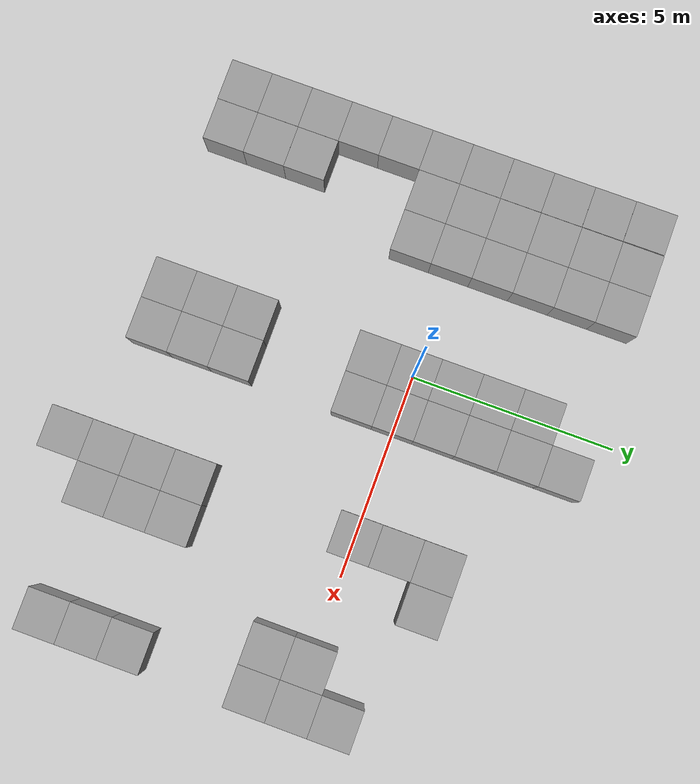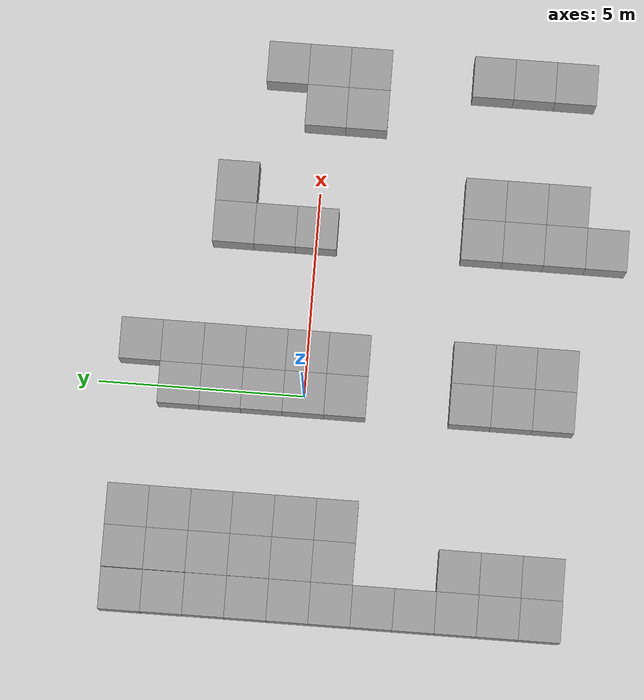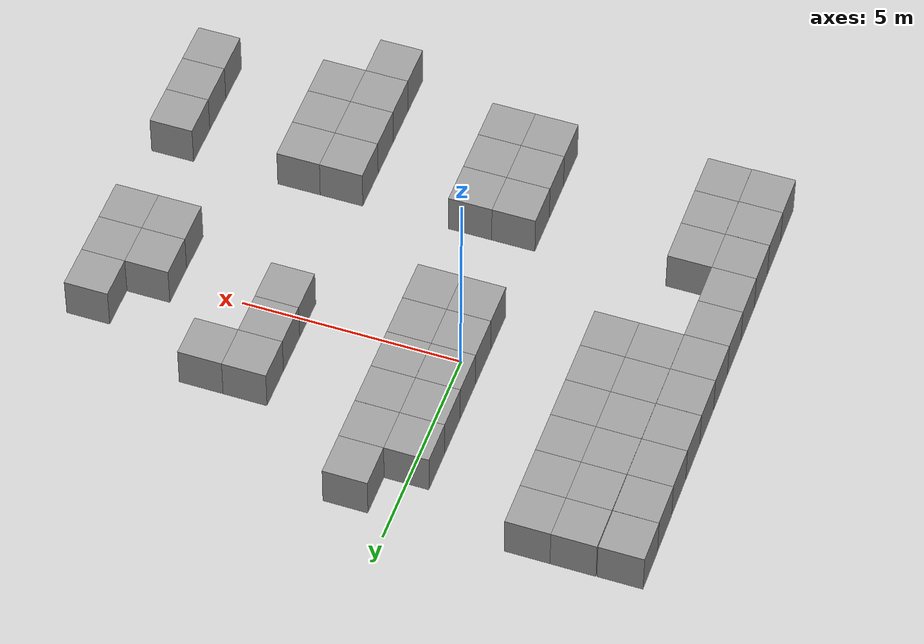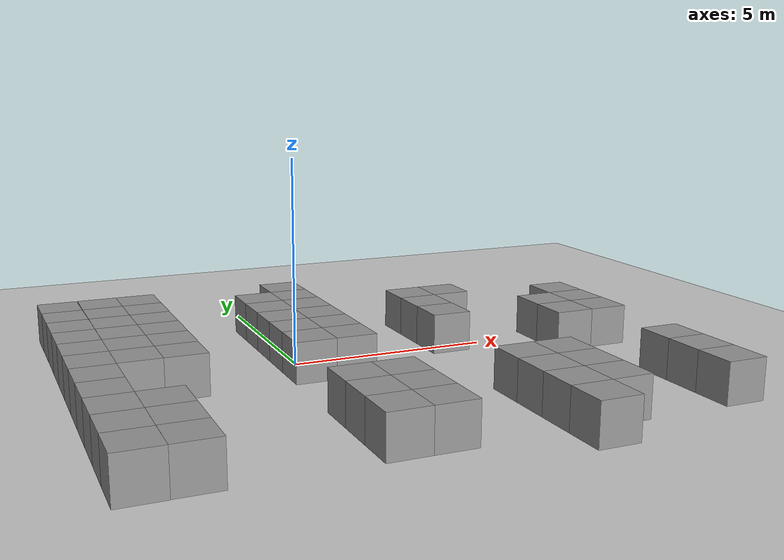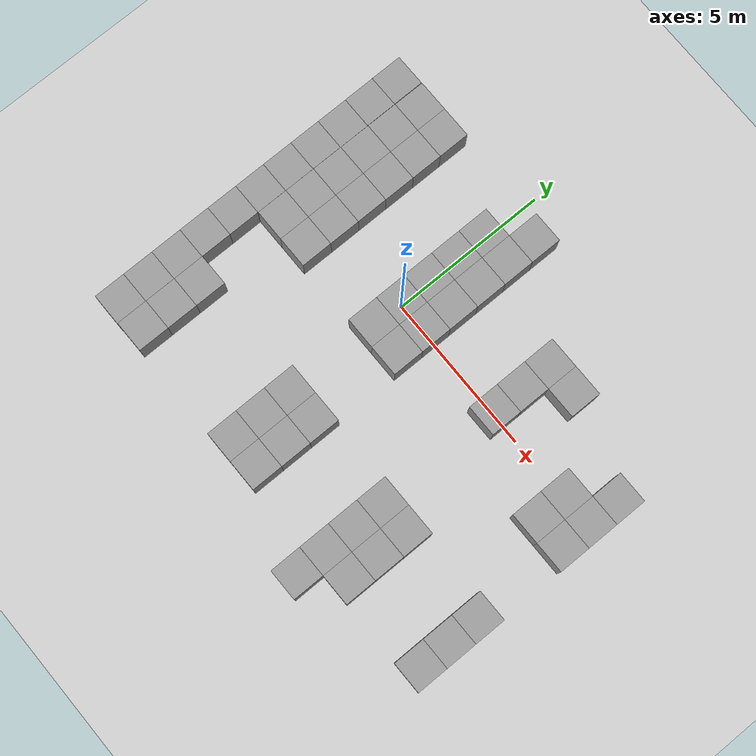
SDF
<sdf version="1.4">
 <world name="default">
  <model name="ground_plane">
   <static>true</static>
   <link name="link">
    <collision name="collision">
     <geometry><plane><normal>0 0 1</normal><size>100 100</size></plane></geometry>
     <surface><friction><ode><mu>100</mu><mu2>50</mu2></ode></friction></surface>
    </collision>
    <visual name="visual">
     <cast_shadows>0</cast_shadows>
     <geometry><plane><normal>0 0 1</normal><size>100 100</size></plane></geometry>
     <material>
      <script><uri>file://media/materials/scripts/gazebo.material</uri><name>Gazebo/Grey</name></script>
     </material>
    </visual>
    <velocity_decay><linear>0</linear><angular>0</angular></velocity_decay>
   </link>
  </model>
  <model name="unit_box_40">
   <pose>-5.01481 3.99235 0.5 0 -0 0.003225</pose>
   <static>true</static>
   <link name="link">
    <inertial>
     <mass>1</mass>
     <inertia><ixx>1</ixx><ixy>0</ixy><ixz>0</ixz><iyy>1</iyy><iyz>0</iyz><izz>1</izz></inertia>
    </inertial>
    <collision name="collision"><geometry><box><size>1 1 1</size></box></geometry></collision>
    <visual name="visual">
     <geometry><box><size>1 1 1</size></box></geometry>
     <material>
      <script><uri>file://media/materials/scripts/gazebo.material</uri><name>Gazebo/Grey</name></script>
     </material>
    </visual>
    <velocity_decay><linear>0</linear><angular>0</angular></velocity_decay>
   </link>
   <static>true</static>
  </model>
  <model name="unit_box_41">
   <pose>-5.00826 2.99203 0.5 0 -0 0.002598</pose>
   <static>true</static>
   <link name="link">
    <inertial>
     <mass>1</mass>
     <inertia><ixx>1</ixx><ixy>0</ixy><ixz>0</ixz><iyy>1</iyy><iyz>0</iyz><izz>1</izz></inertia>
    </inertial>
    <collision name="collision"><geometry><box><size>1 1 1</size></box></geometry></collision>
    <visual name="visual">
     <geometry><box><size>1 1 1</size></box></geometry>
     <material>
      <script><uri>file://media/materials/scripts/gazebo.material</uri><name>Gazebo/Grey</name></script>
     </material>
    </visual>
    <velocity_decay><linear>0</linear><angular>0</angular></velocity_decay>
   </link>
   <static>true</static>
  </model>
  <model name="unit_box_42">
   <pose>-5.0021 1.99164 0.5 0 -0 0.001796</pose>
   <static>true</static>
   <link name="link">
    <inertial>
     <mass>1</mass>
     <inertia><ixx>1</ixx><ixy>0</ixy><ixz>0</ixz><iyy>1</iyy><iyz>0</iyz><izz>1</izz></inertia>
    </inertial>
    <collision name="collision"><geometry><box><size>1 1 1</size></box></geometry></collision>
    <visual name="visual">
     <geometry><box><size>1 1 1</size></box></geometry>
     <material>
      <script><uri>file://media/materials/scripts/gazebo.material</uri><name>Gazebo/Grey</name></script>
     </material>
    </visual>
    <velocity_decay><linear>0</linear><angular>0</angular></velocity_decay>
   </link>
   <static>true</static>
  </model>
  <model name="unit_box_43">
   <pose>-5.00197 0.99143 0.5 0 -0 0.001375</pose>
   <static>true</static>
   <link name="link">
    <inertial>
     <mass>1</mass>
     <inertia><ixx>1</ixx><ixy>0</ixy><ixz>0</ixz><iyy>1</iyy><iyz>0</iyz><izz>1</izz></inertia>
    </inertial>
    <collision name="collision"><geometry><box><size>1 1 1</size></box></geometry></collision>
    <visual name="visual">
     <geometry><box><size>1 1 1</size></box></geometry>
     <material>
      <script><uri>file://media/materials/scripts/gazebo.material</uri><name>Gazebo/Grey</name></script>
     </material>
    </visual>
    <velocity_decay><linear>0</linear><angular>0</angular></velocity_decay>
   </link>
   <static>true</static>
  </model>
  <model name="unit_box_44">
   <pose>-5.00065 -0.008792 0.5 0 -0 0.000932</pose>
   <static>true</static>
   <link name="link">
    <inertial>
     <mass>1</mass>
     <inertia><ixx>1</ixx><ixy>0</ixy><ixz>0</ixz><iyy>1</iyy><iyz>0</iyz><izz>1</izz></inertia>
    </inertial>
    <collision name="collision"><geometry><box><size>1 1 1</size></box></geometry></collision>
    <visual name="visual">
     <geometry><box><size>1 1 1</size></box></geometry>
     <material>
      <script><uri>file://media/materials/scripts/gazebo.material</uri><name>Gazebo/Grey</name></script>
     </material>
    </visual>
    <velocity_decay><linear>0</linear><angular>0</angular></velocity_decay>
   </link>
   <static>true</static>
  </model>
  <model name="unit_box_45">
   <pose>-5.00074 -1.00881 0.5 0 -0 0.000893</pose>
   <static>true</static>
   <link name="link">
    <inertial>
     <mass>1</mass>
     <inertia><ixx>1</ixx><ixy>0</ixy><ixz>0</ixz><iyy>1</iyy><iyz>0</iyz><izz>1</izz></inertia>
    </inertial>
    <collision name="collision"><geometry><box><size>1 1 1</size></box></geometry></collision>
    <visual name="visual">
     <geometry><box><size>1 1 1</size></box></geometry>
     <material>
      <script><uri>file://media/materials/scripts/gazebo.material</uri><name>Gazebo/Grey</name></script>
     </material>
    </visual>
    <velocity_decay><linear>0</linear><angular>0</angular></velocity_decay>
   </link>
   <static>true</static>
  </model>
  <model name="unit_box_46">
   <pose>-5.00037 -2.00886 0.5 0 -0 0.000802</pose>
   <static>true</static>
   <link name="link">
    <inertial>
     <mass>1</mass>
     <inertia><ixx>1</ixx><ixy>0</ixy><ixz>0</ixz><iyy>1</iyy><iyz>0</iyz><izz>1</izz></inertia>
    </inertial>
    <collision name="collision"><geometry><box><size>1 1 1</size></box></geometry></collision>
    <visual name="visual">
     <geometry><box><size>1 1 1</size></box></geometry>
     <material>
      <script><uri>file://media/materials/scripts/gazebo.material</uri><name>Gazebo/Grey</name></script>
     </material>
    </visual>
    <velocity_decay><linear>0</linear><angular>0</angular></velocity_decay>
   </link>
   <static>true</static>
  </model>
  <model name="unit_box_47">
   <pose>-5.00047 -3.0089 0.5 0 -0 0.000729</pose>
   <static>true</static>
   <link name="link">
    <inertial>
     <mass>1</mass>
     <inertia><ixx>1</ixx><ixy>0</ixy><ixz>0</ixz><iyy>1</iyy><iyz>0</iyz><izz>1</izz></inertia>
    </inertial>
    <collision name="collision"><geometry><box><size>1 1 1</size></box></geometry></collision>
    <visual name="visual">
     <geometry><box><size>1 1 1</size></box></geometry>
     <material>
      <script><uri>file://media/materials/scripts/gazebo.material</uri><name>Gazebo/Grey</name></script>
     </material>
    </visual>
    <velocity_decay><linear>0</linear><angular>0</angular></velocity_decay>
   </link>
   <static>true</static>
  </model>
  <model name="unit_box_241">
   <pose>-4.99974 -4.00895 0.5 0 -0 0.000637</pose>
   <static>true</static>
   <link name="link">
    <inertial>
     <mass>1</mass>
     <inertia><ixx>1</ixx><ixy>0</ixy><ixz>0</ixz><iyy>1</iyy><iyz>0</iyz><izz>1</izz></inertia>
    </inertial>
    <collision name="collision"><geometry><box><size>1 1 1</size></box></geometry></collision>
    <visual name="visual">
     <geometry><box><size>1 1 1</size></box></geometry>
     <material>
      <script><uri>file://media/materials/scripts/gazebo.material</uri><name>Gazebo/Grey</name></script>
     </material>
    </visual>
    <velocity_decay><linear>0</linear><angular>0</angular></velocity_decay>
   </link>
   <static>true</static>
  </model>
  <model name="unit_box_1_0">
   <pose>-4.99972 -5.00912 0.5 0 -0 0.000296</pose>
   <link name="link">
    <inertial>
     <mass>1</mass>
     <inertia><ixx>1</ixx><ixy>0</ixy><ixz>0</ixz><iyy>1</iyy><iyz>0</iyz><izz>1</izz></inertia>
    </inertial>
    <collision name="collision"><geometry><box><size>1 1 1</size></box></geometry></collision>
    <visual name="visual">
     <geometry><box><size>1 1 1</size></box></geometry>
     <material>
      <script><uri>file://media/materials/scripts/gazebo.material</uri><name>Gazebo/Grey</name></script>
     </material>
    </visual>
    <velocity_decay><linear>0</linear><angular>0</angular></velocity_decay>
   </link>
   <static>true</static>
  </model>
  <model name="unit_box_2_0">
   <pose>-4.99974 -6.00913 0.5 0 -0 0.000303</pose>
   <link name="link">
    <inertial>
     <mass>1</mass>
     <inertia><ixx>1</ixx><ixy>0</ixy><ixz>0</ixz><iyy>1</iyy><iyz>0</iyz><izz>1</izz></inertia>
    </inertial>
    <collision name="collision"><geometry><box><size>1 1 1</size></box></geometry></collision>
    <visual name="visual">
     <geometry><box><size>1 1 1</size></box></geometry>
     <material>
      <script><uri>file://media/materials/scripts/gazebo.material</uri><name>Gazebo/Grey</name></script>
     </material>
    </visual>
    <velocity_decay><linear>0</linear><angular>0</angular></velocity_decay>
   </link>
   <static>true</static>
  </model>
  <model name="unit_box_49_0">
   <pose>-3.99936 -5.99995 0.5 0 -0 -8.2e-05</pose>
   <link name="link">
    <inertial>
     <mass>1</mass>
     <inertia><ixx>1</ixx><ixy>0</ixy><ixz>0</ixz><iyy>1</iyy><iyz>0</iyz><izz>1</izz></inertia>
    </inertial>
    <collision name="collision"><geometry><box><size>1 1 1</size></box></geometry></collision>
    <visual name="visual">
     <geometry><box><size>1 1 1</size></box></geometry>
     <material>
      <script><uri>file://media/materials/scripts/gazebo.material</uri><name>Gazebo/Grey</name></script>
     </material>
    </visual>
    <velocity_decay><linear>0</linear><angular>0</angular></velocity_decay>
   </link>
   <static>true</static>
  </model>
  <model name="unit_box_50_0">
   <pose>-3.99937 -4.99995 0.5 0 0 -8.2e-05</pose>
   <link name="link">
    <inertial>
     <mass>1</mass>
     <inertia><ixx>1</ixx><ixy>0</ixy><ixz>0</ixz><iyy>1</iyy><iyz>0</iyz><izz>1</izz></inertia>
    </inertial>
    <collision name="collision"><geometry><box><size>1 1 1</size></box></geometry></collision>
    <visual name="visual">
     <geometry><box><size>1 1 1</size></box></geometry>
     <material>
      <script><uri>file://media/materials/scripts/gazebo.material</uri><name>Gazebo/Grey</name></script>
     </material>
    </visual>
    <velocity_decay><linear>0</linear><angular>0</angular></velocity_decay>
   </link>
   <static>true</static>
  </model>
  <model name="unit_box_51_0">
   <pose>-3.99952 -3.99982 0.5 0 -0 0.000178</pose>
   <link name="link">
    <inertial>
     <mass>1</mass>
     <inertia><ixx>1</ixx><ixy>0</ixy><ixz>0</ixz><iyy>1</iyy><iyz>0</iyz><izz>1</izz></inertia>
    </inertial>
    <collision name="collision"><geometry><box><size>1 1 1</size></box></geometry></collision>
    <visual name="visual">
     <geometry><box><size>1 1 1</size></box></geometry>
     <material>
      <script><uri>file://media/materials/scripts/gazebo.material</uri><name>Gazebo/Grey</name></script>
     </material>
    </visual>
    <velocity_decay><linear>0</linear><angular>0</angular></velocity_decay>
   </link>
   <static>true</static>
  </model>
  <model name="unit_box_57_0">
   <pose>1 -5.99988 0.5 0 -0 -5e-06</pose>
   <link name="link">
    <inertial>
     <mass>1</mass>
     <inertia><ixx>1</ixx><ixy>0</ixy><ixz>0</ixz><iyy>1</iyy><iyz>0</iyz><izz>1</izz></inertia>
    </inertial>
    <collision name="collision"><geometry><box><size>1 1 1</size></box></geometry></collision>
    <visual name="visual">
     <geometry><box><size>1 1 1</size></box></geometry>
     <material>
      <script><uri>file://media/materials/scripts/gazebo.material</uri><name>Gazebo/Grey</name></script>
     </material>
    </visual>
    <velocity_decay><linear>0</linear><angular>0</angular></velocity_decay>
   </link>
   <static>true</static>
  </model>
  <model name="unit_box_58_0">
   <pose>1 -4.99988 0.5 0 -0 -5e-06</pose>
   <link name="link">
    <inertial>
     <mass>1</mass>
     <inertia><ixx>1</ixx><ixy>0</ixy><ixz>0</ixz><iyy>1</iyy><iyz>0</iyz><izz>1</izz></inertia>
    </inertial>
    <collision name="collision"><geometry><box><size>1 1 1</size></box></geometry></collision>
    <visual name="visual">
     <geometry><box><size>1 1 1</size></box></geometry>
     <material>
      <script><uri>file://media/materials/scripts/gazebo.material</uri><name>Gazebo/Grey</name></script>
     </material>
    </visual>
    <velocity_decay><linear>0</linear><angular>0</angular></velocity_decay>
   </link>
   <static>true</static>
  </model>
  <model name="unit_box_59_0">
   <pose>1.00001 -3.99988 0.5 0 -0 -4e-06</pose>
   <link name="link">
    <inertial>
     <mass>1</mass>
     <inertia><ixx>1</ixx><ixy>0</ixy><ixz>0</ixz><iyy>1</iyy><iyz>0</iyz><izz>1</izz></inertia>
    </inertial>
    <collision name="collision"><geometry><box><size>1 1 1</size></box></geometry></collision>
    <visual name="visual">
     <geometry><box><size>1 1 1</size></box></geometry>
     <material>
      <script><uri>file://media/materials/scripts/gazebo.material</uri><name>Gazebo/Grey</name></script>
     </material>
    </visual>
    <velocity_decay><linear>0</linear><angular>0</angular></velocity_decay>
   </link>
   <static>true</static>
  </model>
  <model name="unit_box_60_0">
   <pose>-4 -1.00001 0.5 0 -0 -3e-06</pose>
   <link name="link">
    <inertial>
     <mass>1</mass>
     <inertia><ixx>1</ixx><ixy>0</ixy><ixz>0</ixz><iyy>1</iyy><iyz>0</iyz><izz>1</izz></inertia>
    </inertial>
    <collision name="collision"><geometry><box><size>1 1 1</size></box></geometry></collision>
    <visual name="visual">
     <geometry><box><size>1 1 1</size></box></geometry>
     <material>
      <script><uri>file://media/materials/scripts/gazebo.material</uri><name>Gazebo/Grey</name></script>
     </material>
    </visual>
    <velocity_decay><linear>0</linear><angular>0</angular></velocity_decay>
   </link>
   <static>true</static>
  </model>
  <model name="unit_box_61_0">
   <pose>-4 -6e-06 0.5 0 0 -3e-06</pose>
   <link name="link">
    <inertial>
     <mass>1</mass>
     <inertia><ixx>1</ixx><ixy>0</ixy><ixz>0</ixz><iyy>1</iyy><iyz>0</iyz><izz>1</izz></inertia>
    </inertial>
    <collision name="collision"><geometry><box><size>1 1 1</size></box></geometry></collision>
    <visual name="visual">
     <geometry><box><size>1 1 1</size></box></geometry>
     <material>
      <script><uri>file://media/materials/scripts/gazebo.material</uri><name>Gazebo/Grey</name></script>
     </material>
    </visual>
    <velocity_decay><linear>0</linear><angular>0</angular></velocity_decay>
   </link>
   <static>true</static>
  </model>
  <model name="unit_box_62_0">
   <pose>-3.99999 0.999997 0.5 0 0 -5e-06</pose>
   <link name="link">
    <inertial>
     <mass>1</mass>
     <inertia><ixx>1</ixx><ixy>0</ixy><ixz>0</ixz><iyy>1</iyy><iyz>0</iyz><izz>1</izz></inertia>
    </inertial>
    <collision name="collision"><geometry><box><size>1 1 1</size></box></geometry></collision>
    <visual name="visual">
     <geometry><box><size>1 1 1</size></box></geometry>
     <material>
      <script><uri>file://media/materials/scripts/gazebo.material</uri><name>Gazebo/Grey</name></script>
     </material>
    </visual>
    <velocity_decay><linear>0</linear><angular>0</angular></velocity_decay>
   </link>
   <static>true</static>
  </model>
  <model name="unit_box_63_0">
   <pose>-3.99999 2 0.5 -0 -0 -5e-06</pose>
   <link name="link">
    <inertial>
     <mass>1</mass>
     <inertia><ixx>1</ixx><ixy>0</ixy><ixz>0</ixz><iyy>1</iyy><iyz>0</iyz><izz>1</izz></inertia>
    </inertial>
    <collision name="collision"><geometry><box><size>1 1 1</size></box></geometry></collision>
    <visual name="visual">
     <geometry><box><size>1 1 1</size></box></geometry>
     <material>
      <script><uri>file://media/materials/scripts/gazebo.material</uri><name>Gazebo/Grey</name></script>
     </material>
    </visual>
    <velocity_decay><linear>0</linear><angular>0</angular></velocity_decay>
   </link>
   <static>true</static>
  </model>
  <model name="unit_box_64_0">
   <pose>-4.00001 3 0.5 0 -0 -4e-06</pose>
   <link name="link">
    <inertial>
     <mass>1</mass>
     <inertia><ixx>1</ixx><ixy>0</ixy><ixz>0</ixz><iyy>1</iyy><iyz>0</iyz><izz>1</izz></inertia>
    </inertial>
    <collision name="collision"><geometry><box><size>1 1 1</size></box></geometry></collision>
    <visual name="visual">
     <geometry><box><size>1 1 1</size></box></geometry>
     <material>
      <script><uri>file://media/materials/scripts/gazebo.material</uri><name>Gazebo/Grey</name></script>
     </material>
    </visual>
    <velocity_decay><linear>0</linear><angular>0</angular></velocity_decay>
   </link>
   <static>true</static>
  </model>
  <model name="unit_box_65_0">
   <pose>-4 4 0.5 -0 -0 -3e-06</pose>
   <link name="link">
    <inertial>
     <mass>1</mass>
     <inertia><ixx>1</ixx><ixy>0</ixy><ixz>0</ixz><iyy>1</iyy><iyz>0</iyz><izz>1</izz></inertia>
    </inertial>
    <collision name="collision"><geometry><box><size>1 1 1</size></box></geometry></collision>
    <visual name="visual">
     <geometry><box><size>1 1 1</size></box></geometry>
     <material>
      <script><uri>file://media/materials/scripts/gazebo.material</uri><name>Gazebo/Grey</name></script>
     </material>
    </visual>
    <velocity_decay><linear>0</linear><angular>0</angular></velocity_decay>
   </link>
   <static>true</static>
  </model>
  <model name="unit_box_90_0">
   <pose>1.00001 -1.00001 0.5 0 -0 0</pose>
   <link name="link">
    <inertial>
     <mass>1</mass>
     <inertia><ixx>1</ixx><ixy>0</ixy><ixz>0</ixz><iyy>1</iyy><iyz>0</iyz><izz>1</izz></inertia>
    </inertial>
    <collision name="collision"><geometry><box><size>1 1 1</size></box></geometry></collision>
    <visual name="visual">
     <geometry><box><size>1 1 1</size></box></geometry>
     <material>
      <script><uri>file://media/materials/scripts/gazebo.material</uri><name>Gazebo/Grey</name></script>
     </material>
    </visual>
    <velocity_decay><linear>0</linear><angular>0</angular></velocity_decay>
   </link>
   <static>true</static>
  </model>
  <model name="unit_box_91_0">
   <pose>1.00001 -1e-05 0.5 0 -0 1e-06</pose>
   <link name="link">
    <inertial>
     <mass>1</mass>
     <inertia><ixx>1</ixx><ixy>0</ixy><ixz>0</ixz><iyy>1</iyy><iyz>0</iyz><izz>1</izz></inertia>
    </inertial>
    <collision name="collision"><geometry><box><size>1 1 1</size></box></geometry></collision>
    <visual name="visual">
     <geometry><box><size>1 1 1</size></box></geometry>
     <material>
      <script><uri>file://media/materials/scripts/gazebo.material</uri><name>Gazebo/Grey</name></script>
     </material>
    </visual>
    <velocity_decay><linear>0</linear><angular>0</angular></velocity_decay>
   </link>
   <static>true</static>
  </model>
  <model name="unit_box_92_0">
   <pose>1.00001 0.99999 0.5 0 -0 0</pose>
   <link name="link">
    <inertial>
     <mass>1</mass>
     <inertia><ixx>1</ixx><ixy>0</ixy><ixz>0</ixz><iyy>1</iyy><iyz>0</iyz><izz>1</izz></inertia>
    </inertial>
    <collision name="collision"><geometry><box><size>1 1 1</size></box></geometry></collision>
    <visual name="visual">
     <geometry><box><size>1 1 1</size></box></geometry>
     <material>
      <script><uri>file://media/materials/scripts/gazebo.material</uri><name>Gazebo/Grey</name></script>
     </material>
    </visual>
    <velocity_decay><linear>0</linear><angular>0</angular></velocity_decay>
   </link>
   <static>true</static>
  </model>
  <model name="unit_box_93_0">
   <pose>1 1.99999 0.5 0 -0 2e-06</pose>
   <link name="link">
    <inertial>
     <mass>1</mass>
     <inertia><ixx>1</ixx><ixy>0</ixy><ixz>0</ixz><iyy>1</iyy><iyz>0</iyz><izz>1</izz></inertia>
    </inertial>
    <collision name="collision"><geometry><box><size>1 1 1</size></box></geometry></collision>
    <visual name="visual">
     <geometry><box><size>1 1 1</size></box></geometry>
     <material>
      <script><uri>file://media/materials/scripts/gazebo.material</uri><name>Gazebo/Grey</name></script>
     </material>
    </visual>
    <velocity_decay><linear>0</linear><angular>0</angular></velocity_decay>
   </link>
   <static>true</static>
  </model>
  <model name="unit_box_94_0">
   <pose>0.999999 3 0.5 0 -0 0</pose>
   <link name="link">
    <inertial>
     <mass>1</mass>
     <inertia><ixx>1</ixx><ixy>0</ixy><ixz>0</ixz><iyy>1</iyy><iyz>0</iyz><izz>1</izz></inertia>
    </inertial>
    <collision name="collision"><geometry><box><size>1 1 1</size></box></geometry></collision>
    <visual name="visual">
     <geometry><box><size>1 1 1</size></box></geometry>
     <material>
      <script><uri>file://media/materials/scripts/gazebo.material</uri><name>Gazebo/Grey</name></script>
     </material>
    </visual>
    <velocity_decay><linear>0</linear><angular>0</angular></velocity_decay>
   </link>
   <static>true</static>
  </model>
  <model name="unit_box_95_0">
   <pose>1.00001 4 0.5 0 -0 1e-06</pose>
   <link name="link">
    <inertial>
     <mass>1</mass>
     <inertia><ixx>1</ixx><ixy>0</ixy><ixz>0</ixz><iyy>1</iyy><iyz>0</iyz><izz>1</izz></inertia>
    </inertial>
    <collision name="collision"><geometry><box><size>1 1 1</size></box></geometry></collision>
    <visual name="visual">
     <geometry><box><size>1 1 1</size></box></geometry>
     <material>
      <script><uri>file://media/materials/scripts/gazebo.material</uri><name>Gazebo/Grey</name></script>
     </material>
    </visual>
    <velocity_decay><linear>0</linear><angular>0</angular></velocity_decay>
   </link>
   <static>true</static>
  </model>
  <model name="unit_box_106_0">
   <pose>-3 -1.00001 0.5 0 -0 -4e-06</pose>
   <link name="link">
    <inertial>
     <mass>1</mass>
     <inertia><ixx>1</ixx><ixy>0</ixy><ixz>0</ixz><iyy>1</iyy><iyz>0</iyz><izz>1</izz></inertia>
    </inertial>
    <collision name="collision"><geometry><box><size>1 1 1</size></box></geometry></collision>
    <visual name="visual">
     <geometry><box><size>1 1 1</size></box></geometry>
     <material>
      <script><uri>file://media/materials/scripts/gazebo.material</uri><name>Gazebo/Grey</name></script>
     </material>
    </visual>
    <velocity_decay><linear>0</linear><angular>0</angular></velocity_decay>
   </link>
   <static>true</static>
  </model>
  <model name="unit_box_107_0">
   <pose>-3 -6e-06 0.5 -0 -0 -4e-06</pose>
   <link name="link">
    <inertial>
     <mass>1</mass>
     <inertia><ixx>1</ixx><ixy>0</ixy><ixz>0</ixz><iyy>1</iyy><iyz>0</iyz><izz>1</izz></inertia>
    </inertial>
    <collision name="collision"><geometry><box><size>1 1 1</size></box></geometry></collision>
    <visual name="visual">
     <geometry><box><size>1 1 1</size></box></geometry>
     <material>
      <script><uri>file://media/materials/scripts/gazebo.material</uri><name>Gazebo/Grey</name></script>
     </material>
    </visual>
    <velocity_decay><linear>0</linear><angular>0</angular></velocity_decay>
   </link>
   <static>true</static>
  </model>
  <model name="unit_box_108_0">
   <pose>-2.99999 0.999995 0.5 0 -0 -5e-06</pose>
   <link name="link">
    <inertial>
     <mass>1</mass>
     <inertia><ixx>1</ixx><ixy>0</ixy><ixz>0</ixz><iyy>1</iyy><iyz>0</iyz><izz>1</izz></inertia>
    </inertial>
    <collision name="collision"><geometry><box><size>1 1 1</size></box></geometry></collision>
    <visual name="visual">
     <geometry><box><size>1 1 1</size></box></geometry>
     <material>
      <script><uri>file://media/materials/scripts/gazebo.material</uri><name>Gazebo/Grey</name></script>
     </material>
    </visual>
    <velocity_decay><linear>0</linear><angular>0</angular></velocity_decay>
   </link>
   <static>true</static>
  </model>
  <model name="unit_box_109_0">
   <pose>-2.99999 2 0.5 0 0 -5e-06</pose>
   <link name="link">
    <inertial>
     <mass>1</mass>
     <inertia><ixx>1</ixx><ixy>0</ixy><ixz>0</ixz><iyy>1</iyy><iyz>0</iyz><izz>1</izz></inertia>
    </inertial>
    <collision name="collision"><geometry><box><size>1 1 1</size></box></geometry></collision>
    <visual name="visual">
     <geometry><box><size>1 1 1</size></box></geometry>
     <material>
      <script><uri>file://media/materials/scripts/gazebo.material</uri><name>Gazebo/Grey</name></script>
     </material>
    </visual>
    <velocity_decay><linear>0</linear><angular>0</angular></velocity_decay>
   </link>
   <static>true</static>
  </model>
  <model name="unit_box_110_0">
   <pose>-3 3 0.5 0 0 -5e-06</pose>
   <link name="link">
    <inertial>
     <mass>1</mass>
     <inertia><ixx>1</ixx><ixy>0</ixy><ixz>0</ixz><iyy>1</iyy><iyz>0</iyz><izz>1</izz></inertia>
    </inertial>
    <collision name="collision"><geometry><box><size>1 1 1</size></box></geometry></collision>
    <visual name="visual">
     <geometry><box><size>1 1 1</size></box></geometry>
     <material>
      <script><uri>file://media/materials/scripts/gazebo.material</uri><name>Gazebo/Grey</name></script>
     </material>
    </visual>
    <velocity_decay><linear>0</linear><angular>0</angular></velocity_decay>
   </link>
   <static>true</static>
  </model>
  <model name="unit_box_111_0">
   <pose>-3 4 0.5 0 0 -5e-06</pose>
   <link name="link">
    <inertial>
     <mass>1</mass>
     <inertia><ixx>1</ixx><ixy>0</ixy><ixz>0</ixz><iyy>1</iyy><iyz>0</iyz><izz>1</izz></inertia>
    </inertial>
    <collision name="collision"><geometry><box><size>1 1 1</size></box></geometry></collision>
    <visual name="visual">
     <geometry><box><size>1 1 1</size></box></geometry>
     <material>
      <script><uri>file://media/materials/scripts/gazebo.material</uri><name>Gazebo/Grey</name></script>
     </material>
    </visual>
    <velocity_decay><linear>0</linear><angular>0</angular></velocity_decay>
   </link>
   <static>true</static>
  </model>
  <model name="unit_box_116_0">
   <pose>-1e-06 -1.00001 0.5 0 0 -2e-06</pose>
   <link name="link">
    <inertial>
     <mass>1</mass>
     <inertia><ixx>1</ixx><ixy>0</ixy><ixz>0</ixz><iyy>1</iyy><iyz>0</iyz><izz>1</izz></inertia>
    </inertial>
    <collision name="collision"><geometry><box><size>1 1 1</size></box></geometry></collision>
    <visual name="visual">
     <geometry><box><size>1 1 1</size></box></geometry>
     <material>
      <script><uri>file://media/materials/scripts/gazebo.material</uri><name>Gazebo/Grey</name></script>
     </material>
    </visual>
    <velocity_decay><linear>0</linear><angular>0</angular></velocity_decay>
   </link>
   <static>true</static>
  </model>
  <model name="unit_box_118_0">
   <pose>1e-06 -1.1e-05 0.5 0 0 -2e-06</pose>
   <link name="link">
    <inertial>
     <mass>1</mass>
     <inertia><ixx>1</ixx><ixy>0</ixy><ixz>0</ixz><iyy>1</iyy><iyz>0</iyz><izz>1</izz></inertia>
    </inertial>
    <collision name="collision"><geometry><box><size>1 1 1</size></box></geometry></collision>
    <visual name="visual">
     <geometry><box><size>1 1 1</size></box></geometry>
     <material>
      <script><uri>file://media/materials/scripts/gazebo.material</uri><name>Gazebo/Grey</name></script>
     </material>
    </visual>
    <velocity_decay><linear>0</linear><angular>0</angular></velocity_decay>
   </link>
   <static>true</static>
  </model>
  <model name="unit_box_119_0">
   <pose>-4e-06 0.999991 0.5 0 -0 -2e-06</pose>
   <link name="link">
    <inertial>
     <mass>1</mass>
     <inertia><ixx>1</ixx><ixy>0</ixy><ixz>0</ixz><iyy>1</iyy><iyz>0</iyz><izz>1</izz></inertia>
    </inertial>
    <collision name="collision"><geometry><box><size>1 1 1</size></box></geometry></collision>
    <visual name="visual">
     <geometry><box><size>1 1 1</size></box></geometry>
     <material>
      <script><uri>file://media/materials/scripts/gazebo.material</uri><name>Gazebo/Grey</name></script>
     </material>
    </visual>
    <velocity_decay><linear>0</linear><angular>0</angular></velocity_decay>
   </link>
   <static>true</static>
  </model>
  <model name="unit_box_120_0">
   <pose>-5e-06 1.99999 0.5 0 0 -3e-06</pose>
   <link name="link">
    <inertial>
     <mass>1</mass>
     <inertia><ixx>1</ixx><ixy>0</ixy><ixz>0</ixz><iyy>1</iyy><iyz>0</iyz><izz>1</izz></inertia>
    </inertial>
    <collision name="collision"><geometry><box><size>1 1 1</size></box></geometry></collision>
    <visual name="visual">
     <geometry><box><size>1 1 1</size></box></geometry>
     <material>
      <script><uri>file://media/materials/scripts/gazebo.material</uri><name>Gazebo/Grey</name></script>
     </material>
    </visual>
    <velocity_decay><linear>0</linear><angular>0</angular></velocity_decay>
   </link>
   <static>true</static>
  </model>
  <model name="unit_box_121_0">
   <pose>-5e-06 3 0.5 0 0 -5e-06</pose>
   <link name="link">
    <inertial>
     <mass>1</mass>
     <inertia><ixx>1</ixx><ixy>0</ixy><ixz>0</ixz><iyy>1</iyy><iyz>0</iyz><izz>1</izz></inertia>
    </inertial>
    <collision name="collision"><geometry><box><size>1 1 1</size></box></geometry></collision>
    <visual name="visual">
     <geometry><box><size>1 1 1</size></box></geometry>
     <material>
      <script><uri>file://media/materials/scripts/gazebo.material</uri><name>Gazebo/Grey</name></script>
     </material>
    </visual>
    <velocity_decay><linear>0</linear><angular>0</angular></velocity_decay>
   </link>
   <static>true</static>
  </model>
  <model name="unit_box_131_0">
   <pose>4 -6.99985 0.5 0 -0 2e-06</pose>
   <link name="link">
    <inertial>
     <mass>1</mass>
     <inertia><ixx>1</ixx><ixy>0</ixy><ixz>0</ixz><iyy>1</iyy><iyz>0</iyz><izz>1</izz></inertia>
    </inertial>
    <collision name="collision"><geometry><box><size>1 1 1</size></box></geometry></collision>
    <visual name="visual">
     <geometry><box><size>1 1 1</size></box></geometry>
     <material>
      <script><uri>file://media/materials/scripts/gazebo.material</uri><name>Gazebo/Grey</name></script>
     </material>
    </visual>
    <velocity_decay><linear>0</linear><angular>0</angular></velocity_decay>
   </link>
   <static>true</static>
  </model>
  <model name="unit_box_132_0">
   <pose>4 -5.99984 0.5 0 -0 7e-06</pose>
   <link name="link">
    <inertial>
     <mass>1</mass>
     <inertia><ixx>1</ixx><ixy>0</ixy><ixz>0</ixz><iyy>1</iyy><iyz>0</iyz><izz>1</izz></inertia>
    </inertial>
    <collision name="collision"><geometry><box><size>1 1 1</size></box></geometry></collision>
    <visual name="visual">
     <geometry><box><size>1 1 1</size></box></geometry>
     <material>
      <script><uri>file://media/materials/scripts/gazebo.material</uri><name>Gazebo/Grey</name></script>
     </material>
    </visual>
    <velocity_decay><linear>0</linear><angular>0</angular></velocity_decay>
   </link>
   <static>true</static>
  </model>
  <model name="unit_box_133_0">
   <pose>3.99999 -4.99983 0.5 0 -0 0</pose>
   <link name="link">
    <inertial>
     <mass>1</mass>
     <inertia><ixx>1</ixx><ixy>0</ixy><ixz>0</ixz><iyy>1</iyy><iyz>0</iyz><izz>1</izz></inertia>
    </inertial>
    <collision name="collision"><geometry><box><size>1 1 1</size></box></geometry></collision>
    <visual name="visual">
     <geometry><box><size>1 1 1</size></box></geometry>
     <material>
      <script><uri>file://media/materials/scripts/gazebo.material</uri><name>Gazebo/Grey</name></script>
     </material>
    </visual>
    <velocity_decay><linear>0</linear><angular>0</angular></velocity_decay>
   </link>
   <static>true</static>
  </model>
  <model name="unit_box_134_0">
   <pose>4 -3.99983 0.5 0 -0 0</pose>
   <link name="link">
    <inertial>
     <mass>1</mass>
     <inertia><ixx>1</ixx><ixy>0</ixy><ixz>0</ixz><iyy>1</iyy><iyz>0</iyz><izz>1</izz></inertia>
    </inertial>
    <collision name="collision"><geometry><box><size>1 1 1</size></box></geometry></collision>
    <visual name="visual">
     <geometry><box><size>1 1 1</size></box></geometry>
     <material>
      <script><uri>file://media/materials/scripts/gazebo.material</uri><name>Gazebo/Grey</name></script>
     </material>
    </visual>
    <velocity_decay><linear>0</linear><angular>0</angular></velocity_decay>
   </link>
   <static>true</static>
  </model>
  <model name="unit_box_154_0">
   <pose>5.00001 -5.99989 0.5 0 -0 -2e-06</pose>
   <link name="link">
    <inertial>
     <mass>1</mass>
     <inertia><ixx>1</ixx><ixy>0</ixy><ixz>0</ixz><iyy>1</iyy><iyz>0</iyz><izz>1</izz></inertia>
    </inertial>
    <collision name="collision"><geometry><box><size>1 1 1</size></box></geometry></collision>
    <visual name="visual">
     <geometry><box><size>1 1 1</size></box></geometry>
     <material>
      <script><uri>file://media/materials/scripts/gazebo.material</uri><name>Gazebo/Grey</name></script>
     </material>
    </visual>
    <velocity_decay><linear>0</linear><angular>0</angular></velocity_decay>
   </link>
   <static>true</static>
  </model>
  <model name="unit_box_155_0">
   <pose>5 -4.99989 0.5 0 -0 -2e-06</pose>
   <link name="link">
    <inertial>
     <mass>1</mass>
     <inertia><ixx>1</ixx><ixy>0</ixy><ixz>0</ixz><iyy>1</iyy><iyz>0</iyz><izz>1</izz></inertia>
    </inertial>
    <collision name="collision"><geometry><box><size>1 1 1</size></box></geometry></collision>
    <visual name="visual">
     <geometry><box><size>1 1 1</size></box></geometry>
     <material>
      <script><uri>file://media/materials/scripts/gazebo.material</uri><name>Gazebo/Grey</name></script>
     </material>
    </visual>
    <velocity_decay><linear>0</linear><angular>0</angular></velocity_decay>
   </link>
   <static>true</static>
  </model>
  <model name="unit_box_156_0">
   <pose>5.00001 -3.99989 0.5 0 0 -2e-06</pose>
   <link name="link">
    <inertial>
     <mass>1</mass>
     <inertia><ixx>1</ixx><ixy>0</ixy><ixz>0</ixz><iyy>1</iyy><iyz>0</iyz><izz>1</izz></inertia>
    </inertial>
    <collision name="collision"><geometry><box><size>1 1 1</size></box></geometry></collision>
    <visual name="visual">
     <geometry><box><size>1 1 1</size></box></geometry>
     <material>
      <script><uri>file://media/materials/scripts/gazebo.material</uri><name>Gazebo/Grey</name></script>
     </material>
    </visual>
    <velocity_decay><linear>0</linear><angular>0</angular></velocity_decay>
   </link>
   <static>true</static>
  </model>
  <model name="unit_box_159_0">
   <pose>7.99999 -3.99999 0.5 0 -0 0</pose>
   <link name="link">
    <inertial>
     <mass>1</mass>
     <inertia><ixx>1</ixx><ixy>0</ixy><ixz>0</ixz><iyy>1</iyy><iyz>0</iyz><izz>1</izz></inertia>
    </inertial>
    <collision name="collision"><geometry><box><size>1 1 1</size></box></geometry></collision>
    <visual name="visual">
     <geometry><box><size>1 1 1</size></box></geometry>
     <material>
      <script><uri>file://media/materials/scripts/gazebo.material</uri><name>Gazebo/Grey</name></script>
     </material>
    </visual>
    <velocity_decay><linear>0</linear><angular>0</angular></velocity_decay>
   </link>
   <static>true</static>
  </model>
  <model name="unit_box_160_0">
   <pose>8 -4.99999 0.5 0 -0 1e-06</pose>
   <link name="link">
    <inertial>
     <mass>1</mass>
     <inertia><ixx>1</ixx><ixy>0</ixy><ixz>0</ixz><iyy>1</iyy><iyz>0</iyz><izz>1</izz></inertia>
    </inertial>
    <collision name="collision"><geometry><box><size>1 1 1</size></box></geometry></collision>
    <visual name="visual">
     <geometry><box><size>1 1 1</size></box></geometry>
     <material>
      <script><uri>file://media/materials/scripts/gazebo.material</uri><name>Gazebo/Grey</name></script>
     </material>
    </visual>
    <velocity_decay><linear>0</linear><angular>0</angular></velocity_decay>
   </link>
   <static>true</static>
  </model>
  <model name="unit_box_161_0">
   <pose>8 -6 0.5 0 0 -2e-06</pose>
   <link name="link">
    <inertial>
     <mass>1</mass>
     <inertia><ixx>1</ixx><ixy>0</ixy><ixz>0</ixz><iyy>1</iyy><iyz>0</iyz><izz>1</izz></inertia>
    </inertial>
    <collision name="collision"><geometry><box><size>1 1 1</size></box></geometry></collision>
    <visual name="visual">
     <geometry><box><size>1 1 1</size></box></geometry>
     <material>
      <script><uri>file://media/materials/scripts/gazebo.material</uri><name>Gazebo/Grey</name></script>
     </material>
    </visual>
    <velocity_decay><linear>0</linear><angular>0</angular></velocity_decay>
   </link>
   <static>true</static>
  </model>
  <model name="unit_box_206_0">
   <pose>4 2 0.5 0 0 -1e-06</pose>
   <link name="link">
    <inertial>
     <mass>1</mass>
     <inertia><ixx>1</ixx><ixy>0</ixy><ixz>0</ixz><iyy>1</iyy><iyz>0</iyz><izz>1</izz></inertia>
    </inertial>
    <collision name="collision"><geometry><box><size>1 1 1</size></box></geometry></collision>
    <visual name="visual">
     <geometry><box><size>1 1 1</size></box></geometry>
     <material>
      <script><uri>file://media/materials/scripts/gazebo.material</uri><name>Gazebo/Grey</name></script>
     </material>
    </visual>
    <velocity_decay><linear>0</linear><angular>0</angular></velocity_decay>
   </link>
   <static>true</static>
  </model>
  <model name="unit_box_207_0">
   <pose>4 1 0.5 0 -0 0</pose>
   <link name="link">
    <inertial>
     <mass>1</mass>
     <inertia><ixx>1</ixx><ixy>0</ixy><ixz>0</ixz><iyy>1</iyy><iyz>0</iyz><izz>1</izz></inertia>
    </inertial>
    <collision name="collision"><geometry><box><size>1 1 1</size></box></geometry></collision>
    <visual name="visual">
     <geometry><box><size>1 1 1</size></box></geometry>
     <material>
      <script><uri>file://media/materials/scripts/gazebo.material</uri><name>Gazebo/Grey</name></script>
     </material>
    </visual>
    <velocity_decay><linear>0</linear><angular>0</angular></velocity_decay>
   </link>
   <static>true</static>
  </model>
  <model name="unit_box_208_0">
   <pose>5 2 0.5 0 -0 1e-06</pose>
   <link name="link">
    <inertial>
     <mass>1</mass>
     <inertia><ixx>1</ixx><ixy>0</ixy><ixz>0</ixz><iyy>1</iyy><iyz>0</iyz><izz>1</izz></inertia>
    </inertial>
    <collision name="collision"><geometry><box><size>1 1 1</size></box></geometry></collision>
    <visual name="visual">
     <geometry><box><size>1 1 1</size></box></geometry>
     <material>
      <script><uri>file://media/materials/scripts/gazebo.material</uri><name>Gazebo/Grey</name></script>
     </material>
    </visual>
    <velocity_decay><linear>0</linear><angular>0</angular></velocity_decay>
   </link>
   <static>true</static>
  </model>
  <model name="unit_box_209_0">
   <pose>4 -3e-06 0.5 0 -0 -3e-06</pose>
   <link name="link">
    <inertial>
     <mass>1</mass>
     <inertia><ixx>1</ixx><ixy>0</ixy><ixz>0</ixz><iyy>1</iyy><iyz>0</iyz><izz>1</izz></inertia>
    </inertial>
    <collision name="collision"><geometry><box><size>1 1 1</size></box></geometry></collision>
    <visual name="visual">
     <geometry><box><size>1 1 1</size></box></geometry>
     <material>
      <script><uri>file://media/materials/scripts/gazebo.material</uri><name>Gazebo/Grey</name></script>
     </material>
    </visual>
    <velocity_decay><linear>0</linear><angular>0</angular></velocity_decay>
   </link>
   <static>true</static>
  </model>
  <model name="unit_box_238_0">
   <pose>6.99999 6e-06 0.5 0 0 -6e-06</pose>
   <link name="link">
    <inertial>
     <mass>1</mass>
     <inertia><ixx>1</ixx><ixy>0</ixy><ixz>0</ixz><iyy>1</iyy><iyz>0</iyz><izz>1</izz></inertia>
    </inertial>
    <collision name="collision"><geometry><box><size>1 1 1</size></box></geometry></collision>
    <visual name="visual">
     <geometry><box><size>1 1 1</size></box></geometry>
     <material>
      <script><uri>file://media/materials/scripts/gazebo.material</uri><name>Gazebo/Grey</name></script>
     </material>
    </visual>
    <velocity_decay><linear>0</linear><angular>0</angular></velocity_decay>
   </link>
   <static>true</static>
  </model>
  <model name="unit_box_239_0">
   <pose>7.99999 1e-06 0.5 0 0 -3e-06</pose>
   <link name="link">
    <inertial>
     <mass>1</mass>
     <inertia><ixx>1</ixx><ixy>0</ixy><ixz>0</ixz><iyy>1</iyy><iyz>0</iyz><izz>1</izz></inertia>
    </inertial>
    <collision name="collision"><geometry><box><size>1 1 1</size></box></geometry></collision>
    <visual name="visual">
     <geometry><box><size>1 1 1</size></box></geometry>
     <material>
      <script><uri>file://media/materials/scripts/gazebo.material</uri><name>Gazebo/Grey</name></script>
     </material>
    </visual>
    <velocity_decay><linear>0</linear><angular>0</angular></velocity_decay>
   </link>
   <static>true</static>
  </model>
  <model name="unit_box_240_0">
   <pose>8 1.00001 0.5 0 0 -2e-06</pose>
   <link name="link">
    <inertial>
     <mass>1</mass>
     <inertia><ixx>1</ixx><ixy>0</ixy><ixz>0</ixz><iyy>1</iyy><iyz>0</iyz><izz>1</izz></inertia>
    </inertial>
    <collision name="collision"><geometry><box><size>1 1 1</size></box></geometry></collision>
    <visual name="visual">
     <geometry><box><size>1 1 1</size></box></geometry>
     <material>
      <script><uri>file://media/materials/scripts/gazebo.material</uri><name>Gazebo/Grey</name></script>
     </material>
    </visual>
    <velocity_decay><linear>0</linear><angular>0</angular></velocity_decay>
   </link>
   <static>true</static>
  </model>
  <model name="unit_box_248">
   <pose>6.99999 -0.999998 0.5 0 0 -5e-06</pose>
   <link name="link">
    <inertial>
     <mass>1</mass>
     <inertia><ixx>1</ixx><ixy>0</ixy><ixz>0</ixz><iyy>1</iyy><iyz>0</iyz><izz>1</izz></inertia>
    </inertial>
    <collision name="collision"><geometry><box><size>1 1 1</size></box></geometry></collision>
    <visual name="visual">
     <geometry><box><size>1 1 1</size></box></geometry>
     <material>
      <script><uri>file://media/materials/scripts/gazebo.material</uri><name>Gazebo/Grey</name></script>
     </material>
    </visual>
    <velocity_decay><linear>0</linear><angular>0</angular></velocity_decay>
   </link>
   <static>true</static>
  </model>
  <model name="unit_box_249">
   <pose>8 -1 0.5 0 0 -2e-06</pose>
   <link name="link">
    <inertial>
     <mass>1</mass>
     <inertia><ixx>1</ixx><ixy>0</ixy><ixz>0</ixz><iyy>1</iyy><iyz>0</iyz><izz>1</izz></inertia>
    </inertial>
    <collision name="collision"><geometry><box><size>1 1 1</size></box></geometry></collision>
    <visual name="visual">
     <geometry><box><size>1 1 1</size></box></geometry>
     <material>
      <script><uri>file://media/materials/scripts/gazebo.material</uri><name>Gazebo/Grey</name></script>
     </material>
    </visual>
    <velocity_decay><linear>0</linear><angular>0</angular></velocity_decay>
   </link>
   <static>true</static>
  </model>
  <model name="unit_box_409">
   <pose>5e-06 -3.99989 0.5 0 0 -5e-06</pose>
   <link name="link">
    <inertial>
     <mass>1</mass>
     <inertia><ixx>1</ixx><ixy>0</ixy><ixz>0</ixz><iyy>1</iyy><iyz>0</iyz><izz>1</izz></inertia>
    </inertial>
    <collision name="collision"><geometry><box><size>1 1 1</size></box></geometry></collision>
    <visual name="visual">
     <geometry><box><size>1 1 1</size></box></geometry>
     <material>
      <script><uri>file://media/materials/scripts/gazebo.material</uri><name>Gazebo/Grey</name></script>
     </material>
    </visual>
    <velocity_decay><linear>0</linear><angular>0</angular></velocity_decay>
   </link>
   <static>true</static>
  </model>
  <model name="unit_box_410">
   <pose>-8e-06 -4.99989 0.5 0 0 -6e-06</pose>
   <link name="link">
    <inertial>
     <mass>1</mass>
     <inertia><ixx>1</ixx><ixy>0</ixy><ixz>0</ixz><iyy>1</iyy><iyz>0</iyz><izz>1</izz></inertia>
    </inertial>
    <collision name="collision"><geometry><box><size>1 1 1</size></box></geometry></collision>
    <visual name="visual">
     <geometry><box><size>1 1 1</size></box></geometry>
     <material>
      <script><uri>file://media/materials/scripts/gazebo.material</uri><name>Gazebo/Grey</name></script>
     </material>
    </visual>
    <velocity_decay><linear>0</linear><angular>0</angular></velocity_decay>
   </link>
   <static>true</static>
  </model>
  <model name="unit_box_411">
   <pose>-7e-06 -5.9999 0.499998 3.23117e-27 -3e-06 -8e-06</pose>
   <link name="link">
    <inertial>
     <mass>1</mass>
     <inertia><ixx>1</ixx><ixy>0</ixy><ixz>0</ixz><iyy>1</iyy><iyz>0</iyz><izz>1</izz></inertia>
    </inertial>
    <collision name="collision"><geometry><box><size>1 1 1</size></box></geometry></collision>
    <visual name="visual">
     <geometry><box><size>1 1 1</size></box></geometry>
     <material>
      <script><uri>file://media/materials/scripts/gazebo.material</uri><name>Gazebo/Grey</name></script>
     </material>
    </visual>
    <velocity_decay><linear>0</linear><angular>0</angular></velocity_decay>
   </link>
   <static>true</static>
  </model>
 </world>
</sdf>
